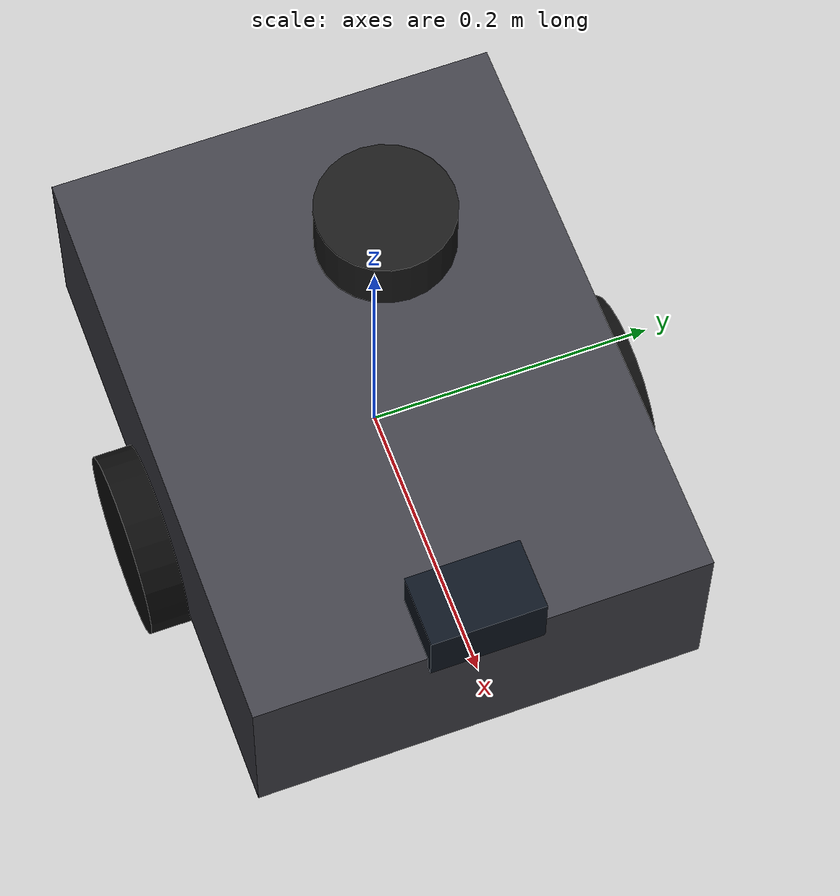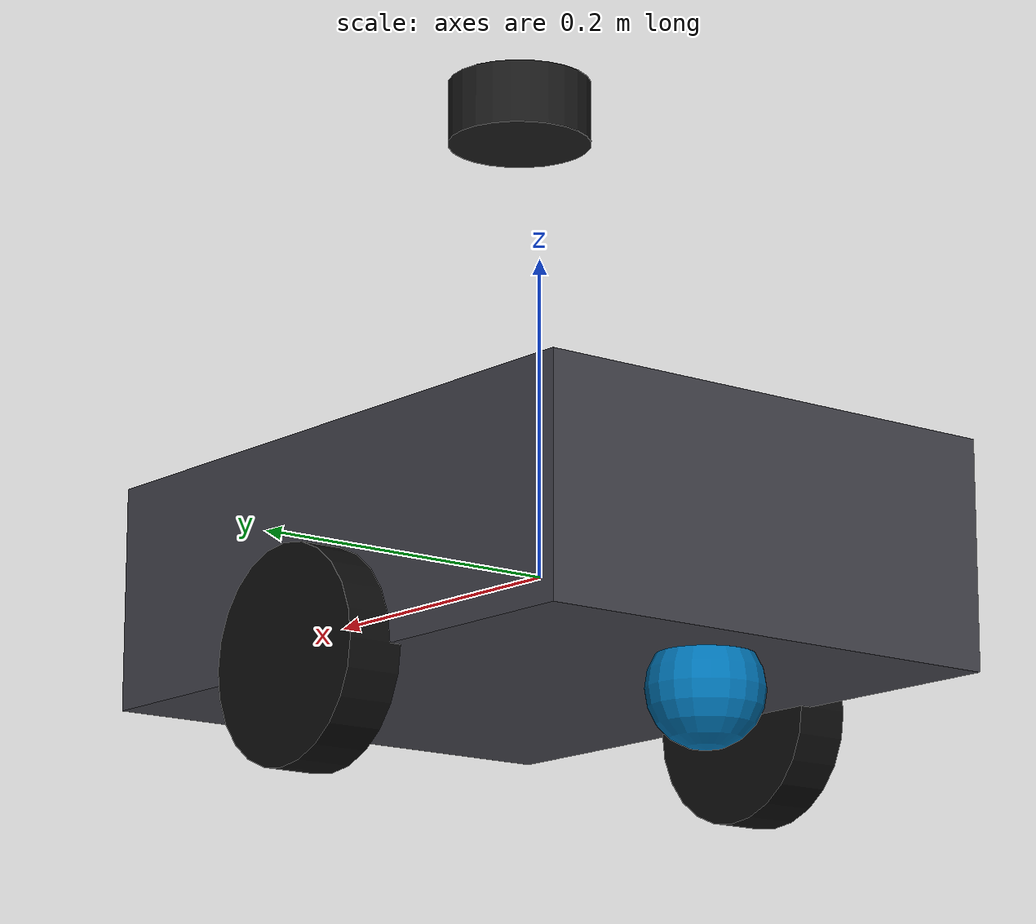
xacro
<?xml version="1.0"?>
<robot xmlns:xacro="http://www.ros.org/wiki/xacro" name="homebot">
  <link name="base_footprint"/>

  <link name="base_link">
    <inertial>
      <origin xyz="0 0 0"/>
      <mass value="12.0"/>
      <inertia ixx="0.15" ixy="0" ixz="0" iyy="0.20" iyz="0" izz="0.25"/>
    </inertial>
    <visual>
      <geometry><box size="0.42 0.32 0.14"/></geometry>
      <material name="body"><color rgba="0.25 0.25 0.28 1.0"/></material>
    </visual>
    <collision><geometry><box size="0.42 0.32 0.14"/></geometry></collision>
  </link>

  <joint name="base_footprint_joint" type="fixed">
    <parent link="base_footprint"/>
    <child link="base_link"/>
    <origin xyz="0 0 0" rpy="0 0 0"/>
  </joint>

  <link name="left_wheel_link">
    <inertial>
      <mass value="0.7"/>
      <origin xyz="0 0 0"/>
      <inertia ixx="0.0015" ixy="0" ixz="0" iyy="0.0015" iyz="0" izz="0.001"/>
    </inertial>
    <visual>
      <origin rpy="1.57079632679 0 0"/>
      <geometry><cylinder radius="0.065" length="0.035"/></geometry>
      <material name="wheel"><color rgba="0.05 0.05 0.05 1"/></material>
    </visual>
    <collision>
      <origin rpy="1.57079632679 0 0"/>
      <geometry><cylinder radius="0.065" length="0.035"/></geometry>
    </collision>
  </link>

  <link name="right_wheel_link">
    <inertial>
      <mass value="0.7"/>
      <origin xyz="0 0 0"/>
      <inertia ixx="0.0015" ixy="0" ixz="0" iyy="0.0015" iyz="0" izz="0.001"/>
    </inertial>
    <visual>
      <origin rpy="1.57079632679 0 0"/>
      <geometry><cylinder radius="0.065" length="0.035"/></geometry>
      <material name="wheel"/>
    </visual>
    <collision>
      <origin rpy="1.57079632679 0 0"/>
      <geometry><cylinder radius="0.065" length="0.035"/></geometry>
    </collision>
  </link>

  <joint name="left_wheel_joint" type="continuous">
    <parent link="base_link"/>
    <child link="left_wheel_link"/>
    <origin xyz="0 0.17 -0.07"/>
    <axis xyz="0 1 0"/>
  </joint>

  <joint name="right_wheel_joint" type="continuous">
    <parent link="base_link"/>
    <child link="right_wheel_link"/>
    <origin xyz="0 -0.17 -0.07"/>
    <axis xyz="0 1 0"/>
  </joint>

  <link name="caster_link">
    <inertial>
      <mass value="0.2"/>
      <origin xyz="0 0 0"/>
      <inertia ixx="0.0002" ixy="0" ixz="0" iyy="0.0002" iyz="0" izz="0.0002"/>
    </inertial>
    <visual><geometry><sphere radius="0.035"/></geometry></visual>
    <collision><geometry><sphere radius="0.035"/></geometry></collision>
  </link>

  <joint name="caster_joint" type="fixed">
    <parent link="base_link"/>
    <child link="caster_link"/>
    <origin xyz="-0.15 0 -0.09"/>
  </joint>

  <link name="lidar_link">
    <inertial>
      <mass value="0.15"/>
      <origin xyz="0 0 0"/>
      <inertia ixx="0.0001" ixy="0" ixz="0" iyy="0.0001" iyz="0" izz="0.0001"/>
    </inertial>
    <visual>
      <geometry><cylinder radius="0.045" length="0.04"/></geometry>
      <material name="sensor"><color rgba="0.1 0.1 0.1 1"/></material>
    </visual>
    <collision><geometry><cylinder radius="0.045" length="0.04"/></geometry></collision>
  </link>

  <joint name="lidar_joint" type="fixed">
    <parent link="base_link"/>
    <child link="lidar_link"/>
    <origin xyz="0.02 0 0.30"/>
  </joint>

  <link name="camera_link">
    <inertial>
      <mass value="0.1"/>
      <origin xyz="0 0 0"/>
      <inertia ixx="0.0001" ixy="0" ixz="0" iyy="0.0001" iyz="0" izz="0.0001"/>
    </inertial>
    <visual>
      <geometry><box size="0.05 0.08 0.045"/></geometry>
      <material name="camera"><color rgba="0.05 0.08 0.12 1"/></material>
    </visual>
    <collision><geometry><box size="0.05 0.08 0.045"/></geometry></collision>
  </link>

  <joint name="camera_joint" type="fixed">
    <parent link="base_link"/>
    <child link="camera_link"/>
    <origin xyz="0.19 0 0.08"/>
  </joint>

  <gazebo reference="left_wheel_link"><mu1>1.0</mu1><mu2>1.0</mu2></gazebo>
  <gazebo reference="right_wheel_link"><mu1>1.0</mu1><mu2>1.0</mu2></gazebo>
  <gazebo reference="caster_link"><mu1>0.05</mu1><mu2>0.05</mu2></gazebo>

  <gazebo>
    <plugin name="homebot_diff_drive" filename="libgazebo_ros_diff_drive.so">
      <ros><namespace>/</namespace></ros>
      <update_rate>50</update_rate>
      <left_joint>left_wheel_joint</left_joint>
      <right_joint>right_wheel_joint</right_joint>
      <wheel_separation>0.34</wheel_separation>
      <wheel_diameter>0.13</wheel_diameter>
      <max_wheel_torque>20</max_wheel_torque>
      <max_wheel_acceleration>2.0</max_wheel_acceleration>
      <command_topic>cmd_vel</command_topic>
      <odometry_topic>odom</odometry_topic>
      <odometry_frame>odom</odometry_frame>
      <robot_base_frame>base_footprint</robot_base_frame>
      <publish_odom>true</publish_odom>
      <publish_odom_tf>true</publish_odom_tf>
      <publish_wheel_tf>true</publish_wheel_tf>
    </plugin>
  </gazebo>

  <gazebo reference="lidar_link">
    <sensor name="lidar" type="ray">
      <always_on>true</always_on>
      <visualize>false</visualize>
      <update_rate>10</update_rate>
      <ray>
        <scan>
          <horizontal>
            <samples>360</samples>
            <resolution>1</resolution>
            <min_angle>-3.14159265359</min_angle>
            <max_angle>3.14159265359</max_angle>
          </horizontal>
        </scan>
        <range><min>0.12</min><max>8.0</max><resolution>0.01</resolution></range>
      </ray>
      <plugin name="lidar_ros" filename="libgazebo_ros_ray_sensor.so">
        <ros><remapping>~/out:=scan</remapping></ros>
        <output_type>sensor_msgs/LaserScan</output_type>
        <frame_name>lidar_link</frame_name>
      </plugin>
    </sensor>
  </gazebo>

  <gazebo reference="camera_link">
    <sensor name="front_camera" type="camera">
      <always_on>true</always_on>
      <update_rate>15</update_rate>
      <camera>
        <horizontal_fov>1.396</horizontal_fov>
        <image><width>640</width><height>480</height><format>R8G8B8</format></image>
        <clip><near>0.05</near><far>15.0</far></clip>
      </camera>
      <plugin name="camera_ros" filename="libgazebo_ros_camera.so">
        <ros>
          <remapping>image_raw:=camera/image_raw</remapping>
          <remapping>camera_info:=camera/camera_info</remapping>
        </ros>
        <camera_name>front_camera</camera_name>
        <frame_name>camera_link</frame_name>
      </plugin>
    </sensor>
  </gazebo>
</robot>
